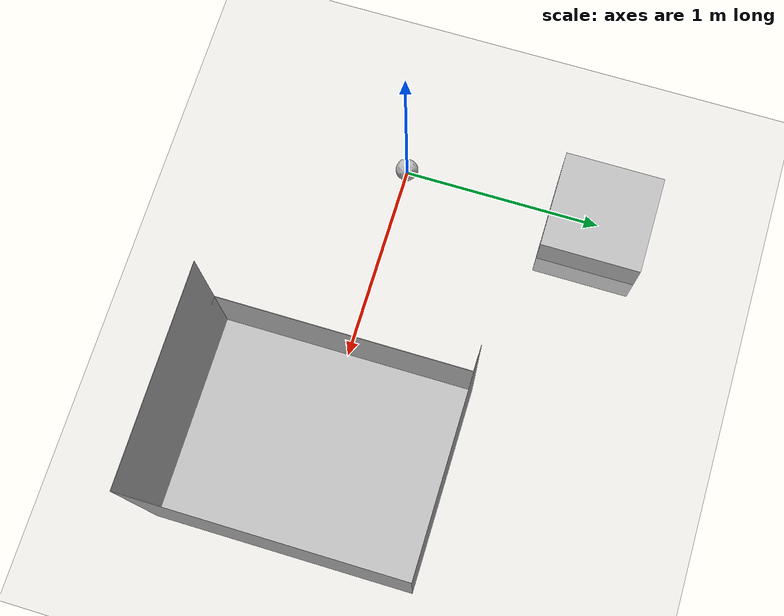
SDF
<sdf version='1.6'>
  <world name='default'>
    <model name='ground_plane'>
      <static>1</static>
      <link name='link'>
        <collision name='collision'>
          <geometry>
            <plane>
              <normal>0 0 1</normal>
              <size>100 100</size>
            </plane>
          </geometry>
          <surface>
            <contact>
              <collide_bitmask>65535</collide_bitmask>
              <ode/>
            </contact>
            <friction>
              <ode>
                <mu>100</mu>
                <mu2>50</mu2>
              </ode>
              <torsional>
                <ode/>
              </torsional>
            </friction>
            <bounce/>
          </surface>
          <max_contacts>10</max_contacts>
        </collision>
        <visual name='visual'>
          <cast_shadows>0</cast_shadows>
          <geometry>
            <plane>
              <normal>0 0 1</normal>
              <size>100 100</size>
            </plane>
          </geometry>
          <material>
            <script>
              <uri>file://media/materials/scripts/gazebo.material</uri>
              <name>Gazebo/Grey</name>
            </script>
          </material>
        </visual>
        <self_collide>0</self_collide>
        <enable_wind>0</enable_wind>
        <kinematic>0</kinematic>
      </link>
    </model>
    <light name='sun' type='directional'>
      <cast_shadows>1</cast_shadows>
      <pose frame=''>0 0 10 0 -0 0</pose>
      <diffuse>0.8 0.8 0.8 1</diffuse>
      <specular>0.2 0.2 0.2 1</specular>
      <attenuation>
        <range>1000</range>
        <constant>0.9</constant>
        <linear>0.01</linear>
        <quadratic>0.001</quadratic>
      </attenuation>
      <direction>-0.5 0.1 -0.9</direction>
    </light>
    <model name='mytable'>
      <static>1</static>
      <link name='link'>
        <inertial>
          <mass>60</mass>
          <inertia>
            <ixx>2.05</ixx>
            <ixy>0</ixy>
            <ixz>0</ixz>
            <iyy>2.05</iyy>
            <iyz>0</iyz>
            <izz>2.5</izz>
          </inertia>
        </inertial>
        <collision name='collision'>
          <geometry>
            <box>
              <size>0.5 0.5 0.4</size>
            </box>
          </geometry>
          <max_contacts>10</max_contacts>
          <surface>
            <contact>
              <ode/>
            </contact>
            <bounce/>
            <friction>
              <torsional>
                <ode/>
              </torsional>
              <ode/>
            </friction>
          </surface>
        </collision>
        <visual name='visual'>
          <geometry>
            <box>
              <size>0.5 0.5 0.4</size>
            </box>
          </geometry>
        </visual>
        <self_collide>0</self_collide>
        <enable_wind>0</enable_wind>
        <kinematic>0</kinematic>
      </link>
      <pose frame=''>0 1 0 0 0 0</pose>
    </model>
    <model name='container'>
      <static>1</static>
      <link name='link'>
        <inertial>
          <mass>69</mass>
          <inertia>
            <ixx>1</ixx>
            <ixy>0</ixy>
            <ixz>0</ixz>
            <iyy>1</iyy>
            <iyz>0</iyz>
            <izz>1</izz>
          </inertia>
        </inertial>
        <collision name='collision'>
          <geometry>
            <mesh>
              <scale>0.001 0.001 0.001</scale>
              <uri>model://big_container_open/big_container_open_meshlab.dae</uri>
            </mesh>
          </geometry>
          <surface>
            <friction>
              <ode>
                <mu>0.6</mu>
                <mu2>0.6</mu2>
              </ode>
              <torsional>
                <ode/>
              </torsional>
            </friction>
            <contact>
              <ode>
                <max_vel>0.1</max_vel>
                <min_depth>0.0001</min_depth>
              </ode>
            </contact>
            <bounce/>
          </surface>
          <max_contacts>10</max_contacts>
        </collision>
        <visual name='visual'>
          <geometry>
            <mesh>
              <scale>0.001 0.001 0.001</scale>
              <uri>model://big_container_open/big_container_open_meshlab.dae</uri>
            </mesh>
          </geometry>
        </visual>
        <self_collide>0</self_collide>
        <enable_wind>0</enable_wind>
        <kinematic>0</kinematic>
      </link>
      <pose frame=''>1.5 0 0 0 0 -1.570796</pose>
    </model>
    <model name='cabbage_0'>
      <link name='link'>
        <inertial>
          <mass>1.5</mass>
          <inertia>
            <ixx>0.0017004</ixx>
            <ixy>0</ixy>
            <ixz>0</ixz>
            <iyy>0.0019839</iyy>
            <iyz>0</iyz>
            <izz>0.0016659</izz>
          </inertia>
        </inertial>
        <collision name='collision'>
          <geometry>
            <mesh>
              <scale>0.001 0.001 0.001</scale>
              <uri>model://cabbage/cabbage_single.dae</uri>
            </mesh>
          </geometry>
          <surface>
            <friction>
              <ode>
                <mu>0.8</mu>
                <mu2>0.8</mu2>
              </ode>
              <torsional>
                <ode/>
              </torsional>
            </friction>
            <contact>
              <ode>
                <max_vel>0.1</max_vel>
                <min_depth>0.0001</min_depth>
              </ode>
            </contact>
            <bounce/>
          </surface>
          <max_contacts>10</max_contacts>
        </collision>
        <visual name='visual'>
          <geometry>
            <mesh>
              <scale>0.001 0.001 0.001</scale>
              <uri>model://cabbage/cabbage_single.dae</uri>
            </mesh>
          </geometry>
          <material>
            <script>
              <uri>model://cabbage/texture.material</uri>
              <name>CabbageTexture</name>
            </script>
          </material>
        </visual>
        <self_collide>0</self_collide>
        <enable_wind>0</enable_wind>
        <kinematic>0</kinematic>
      </link>
      <pose frame=''>0 0 0.047 1.570796 0 0</pose>
    </model>
  </world>
</sdf>
